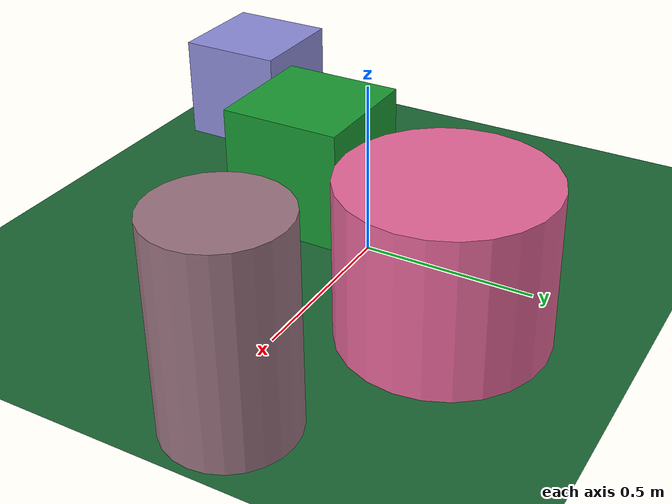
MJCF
<mujoco>
   <asset>
<texture type="skybox" builtin="gradient" rgb1="0.4 0.5 0.3" rgb2="0.5 0.6 0.4" width="256" height="256"/>
<texture name="checker_0" builtin="checker" rgb1="0.9 0.2 0.7" rgb2="0.3 0.7 0.3" width="200" height="200"/>
<texture name="checker_1" builtin="checker" rgb1="0.8 0.7 0.8" rgb2="1.0 0.1 0.4" width="200" height="200"/>
<texture name="flat_2" builtin="flat" rgb1="0.1 0.6 0.2" rgb2="0.1 0.6 0.2"  width="200" height="200"/>
<texture name="checker_3" builtin="checker" rgb1="0.7 0.6 1.0" rgb2="0.4 0.5 0.7" width="200" height="200"/><material name="checker_0_mat" reflectance="0" texrepeat="9 9" texture="checker_0" texuniform="false" />
<material name="checker_1_mat" reflectance="0" texrepeat="7 7" texture="checker_1" texuniform="false" />
<material name="flat_2_mat" reflectance="0" texture="flat_2" texuniform="true"/>
<material name="checker_3_mat" reflectance="0" texrepeat="5 5" texture="checker_3" texuniform="false" />
   </asset>

   <worldbody>
      <light diffuse=".9 .9 .9" pos="0 0 3" dir="0 0 -1"/>
     <geom type="plane" size="1 1 0.1" rgba="0.1 0.4 0.2 1"/>
<geom type="cylinder" pos="0.81 0.09 0.28" size="0.17 0.28 0.28" material="checker_0_mat" />
<geom type="cylinder" pos="0.26 0.36 0.22" size="0.28 0.22 0.22" material="checker_1_mat" />
<geom type="box" pos="-0.12 -0.25 0.18" size="0.18 0.18 0.18" material="flat_2_mat" />
<geom type="box" pos="-0.54 -0.72 0.16" size="0.16 0.16 0.16" material="checker_3_mat" /><camera euler="60 0 180" fovy="60" name="camera_a" pos="0 -1.5 1"></camera>   </worldbody>
</mujoco>
